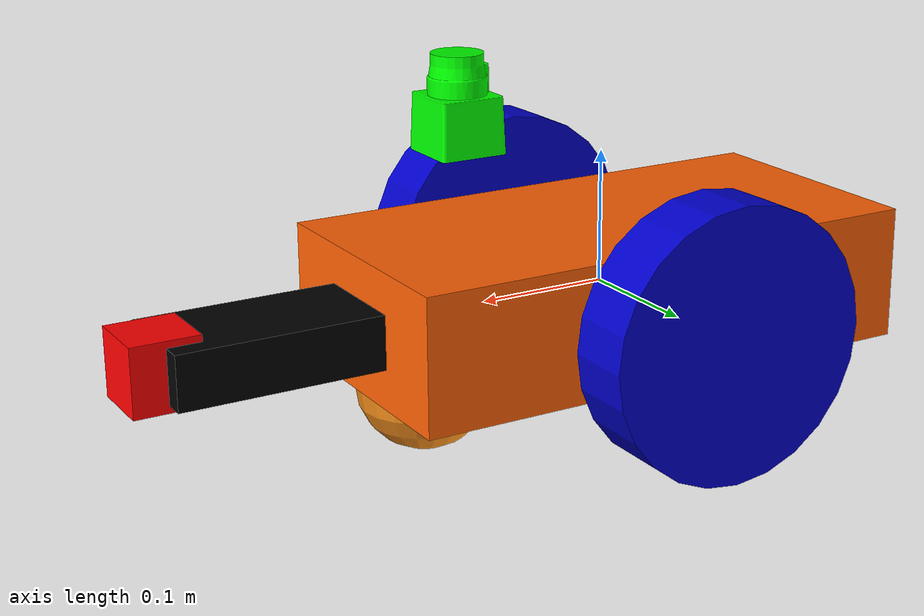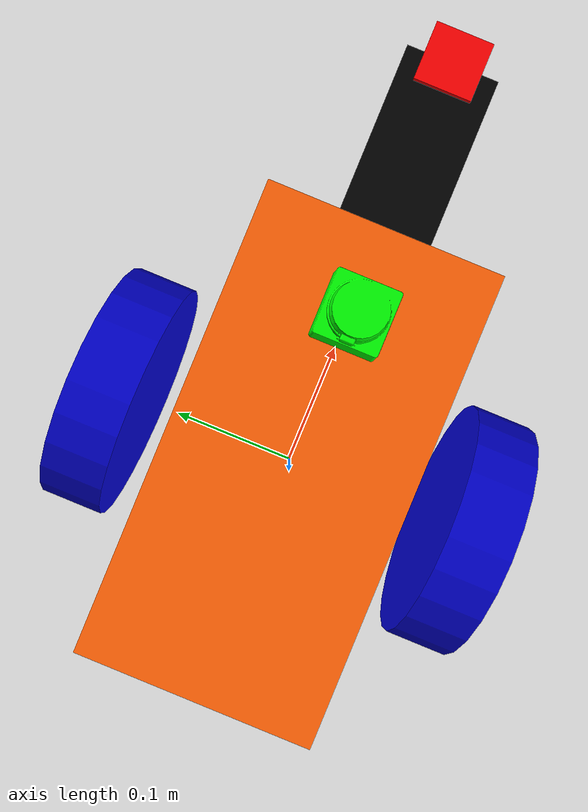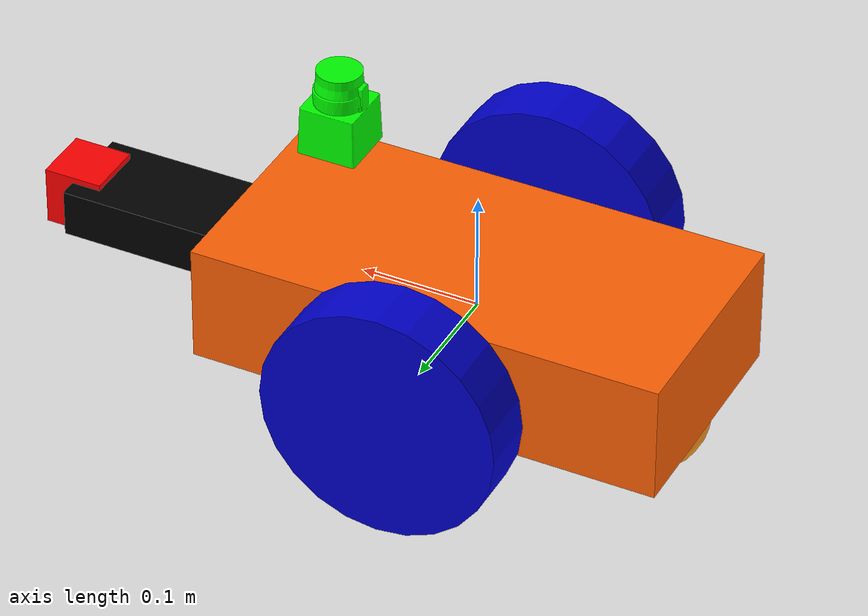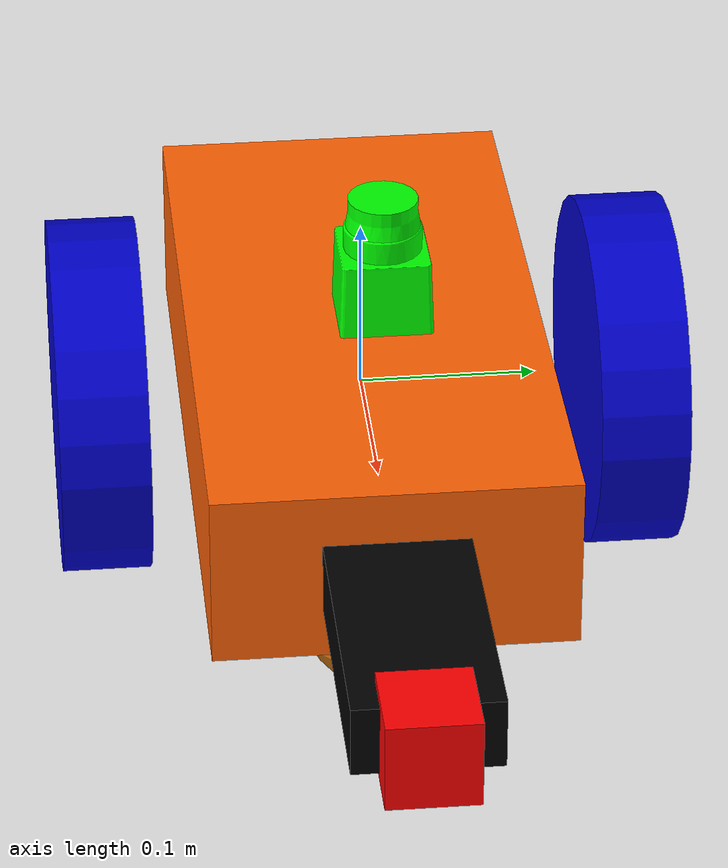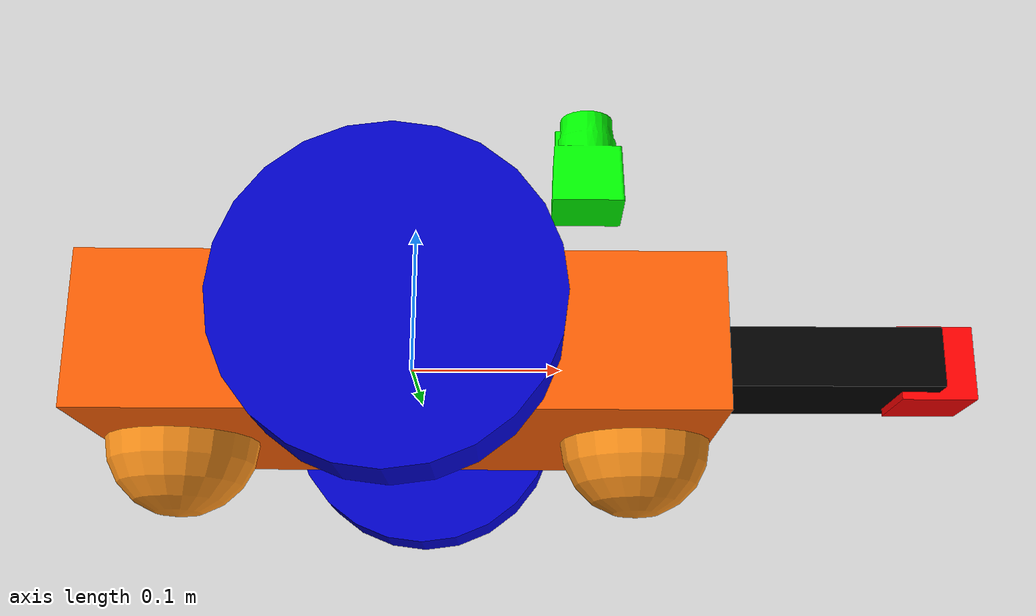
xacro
<?xml version='1.0'?>

<robot name="slam_bot" xmlns:xacro="http://www.ros.org/wiki/xacro">
  <xacro:include filename="$(find slam_project)/urdf/slam_bot.gazebo" />

  <!-- Color descriptions -->
	<material name="blue">
        <color rgba="0 0 0.8 1"/>
    </material>

	<material name="black">
		<color rgba="0 0 0 1"/>
	</material>

	<material name="white">
		<color rgba="1 1 1 1"/>
	</material>

	<material name="grey">
		<color rgba="0.8 0.8 0.8 1"/>
	</material>

    <material name="orange">
		<color rgba="1 0.38 0.02 1"/>
	</material>

    <material name="red">
		<color rgba="1 0 0 1"/>
	</material>

    <material name="green">
		<color rgba="0 1 0 1"/>
	</material>

  <link name="robot_footprint"></link>

  <joint name="robot_footprint_joint" type="fixed">
    <origin xyz="0 0 0" rpy="0 0 0" />
    <parent link="robot_footprint"/>
    <child link="chassis" />
  </joint>

  <link name='chassis'>
    <pose>0 0 0.1 0 0 0</pose>

    <inertial>
      <mass value="25.0"/>
      <origin xyz="0.0 0 0" rpy=" 0 0 0"/>
      <inertia
          ixx="0.1" ixy="0" ixz="0"
          iyy="0.1" iyz="0"
          izz="0.1"
      />
    </inertial>

    <collision name='chassis_collision'>
      <origin xyz="0 0 0" rpy=" 0 0 0"/>
      <geometry>
        <box size=".4 .2 .1"/>
      </geometry>
    </collision>

    <visual name='chassis_visual'>
      <origin xyz="0 0 0" rpy=" 0 0 0"/>
      <geometry>
        <box size=".4 .2 .1"/>
      </geometry>
      <material name="orange"/>
    </visual>

    <collision name='front_chassis_collision'>
      <origin xyz="0.2 0 0" rpy=" 0 0 0"/>
      <geometry>
        <box size=".3 .08 .04"/>
      </geometry>
    </collision>

    <visual name='front_chassis_visual'>
      <origin xyz="0.2 0 0" rpy=" 0 0 0"/>
      <geometry>
        <box size=".3 .08 .04"/>
      </geometry>
      <material name="black"/>
    </visual>

    <collision name='back_caster_collision'>
      <origin xyz="-0.15 0 -0.05" rpy=" 0 0 0"/>
      <geometry>
        <sphere radius="0.0499"/>
      </geometry>
    </collision>

    <visual name='back_caster_visual'>
      <origin xyz="-0.15 0 -0.05" rpy=" 0 0 0"/>
      <geometry>
        <sphere radius="0.05"/>
      </geometry>
    </visual>

    <collision name='front_caster_collision'>
      <origin xyz="0.15 0 -0.05" rpy=" 0 0 0"/>
      <geometry>
        <sphere radius="0.0499"/>
      </geometry>
    </collision>

    <visual name='front_caster_visual'>
      <origin xyz="0.15 0 -0.05" rpy=" 0 0 0"/>
      <geometry>
        <sphere radius="0.05"/>
      </geometry>
    </visual>

  </link>

  <link name="left_wheel">
    <inertial>
      <mass value="5.0"/>
      <origin xyz="0.0 0 0" rpy=" 0 1.5707 1.5707"/>
      <inertia
          ixx="0.1" ixy="0" ixz="0"
          iyy="0.1" iyz="0"
          izz="0.1"
      />
    </inertial>

    <collision name='collision'>
      <origin xyz="0.0 0 0" rpy=" 0 1.5707 1.5707"/>
      <geometry>
        <cylinder radius="0.1" length="0.05"/>
      </geometry>
    </collision>

    <visual name='left_wheel_visual'>
      <origin xyz="0.0 0 0" rpy=" 0 1.5707 1.5707"/>
      <geometry>
        <cylinder radius="0.1" length="0.05"/>
      </geometry>
      <material name="blue"/>
    </visual>
  </link>

  <joint type="continuous" name="left_wheel_hinge">
    <origin xyz="0 0.15 0" rpy="0 0 0"/>
    <child link="left_wheel"/>
    <parent link="chassis"/>
    <axis xyz="0 1 0" rpy="0 0 0"/>
    <limit effort="10000" velocity="1000"/>
    <dynamics damping="1.0" friction="1.0"/>
  </joint>

  <link name="right_wheel">
    <inertial>
      <mass value="5.0"/>
      <origin xyz="0.0 0 0" rpy=" 0 1.5707 1.5707"/>
      <inertia
          ixx="0.1" ixy="0" ixz="0"
          iyy="0.1" iyz="0"
          izz="0.1"
      />
    </inertial>

    <collision name='collision'>
      <origin xyz="0.0 0 0" rpy=" 0 1.5707 1.5707"/>
      <geometry>
        <cylinder radius="0.1" length="0.05"/>
      </geometry>
    </collision>

    <visual name='right_wheel_visual'>
      <origin xyz="0.0 0 0" rpy=" 0 1.5707 1.5707"/>
      <geometry>
        <cylinder radius="0.1" length="0.05"/>
      </geometry>
      <material name="blue"/>
    </visual>
  </link>

  <joint type="continuous" name="right_wheel_hinge">
    <origin xyz="0 -0.15 0" rpy="0 0 0"/>
    <child link="right_wheel"/>
    <parent link="chassis"/>
    <axis xyz="0 1 0" rpy="0 0 0"/>
    <limit effort="10000" velocity="1000"/>
    <dynamics damping="1.0" friction="1.0"/>
  </joint>

  <link name="camera">
    <inertial>
      <mass value="0.1"/>
      <origin xyz="0.0 0 0" rpy=" 0 0 0"/>
      <inertia
          ixx="1e-6" ixy="0" ixz="0"
          iyy="1e-6" iyz="0"
          izz="1e-6"
      />
    </inertial>

    <collision name='collision'>
      <origin xyz="0.0 0 0" rpy=" 0 0 0"/>
      <geometry>
        <box size="0.05 0.05 0.05"/>
      </geometry>
    </collision>

    <visual name='camera_visual'>
      <origin xyz="0.0 0 0" rpy=" 0 0 0"/>
      <geometry>
        <box size="0.05 0.05 0.05"/>
      </geometry>
      <material name="red"/>
    </visual>
  </link>

  <joint type="fixed" name="camera_joint">
    <origin xyz="0.35 0 0" rpy="0 0 0"/>
    <child link="camera"/>
    <parent link="chassis"/>
    <axis xyz="0 1 0" rpy="0 0 0"/>
    <limit effort="10000" velocity="1000"/>
    <dynamics damping="1.0" friction="1.0"/>
  </joint>

  <link name="camera_rgbd_frame"></link>

  <joint name="camera_rgbd_joint" type="fixed">
    <origin xyz="0 0 0" rpy="-${pi/2} 0 -${pi/2}"/>
    <parent link="camera"/>
    <child link="camera_rgbd_frame"/>
  </joint>

  <link name="hokuyo">
    <inertial>
      <mass value="0.1"/>
      <origin xyz="0.0 0 0" rpy=" 0 0 0"/>
      <inertia
          ixx="1e-6" ixy="0" ixz="0"
          iyy="1e-6" iyz="0"
          izz="1e-6"
      />
    </inertial>

    <collision name='collision'>
      <origin xyz="0.0 0 0" rpy=" 0 0 0"/>
      <geometry>
        <box size="0.1 0.1 0.1"/>
      </geometry>
    </collision>

    <visual name='hokuyo_visual'>
      <origin xyz="0.0 0 0" rpy=" 0 0 0"/>
      <geometry>
        <mesh filename="package://slam_project/meshes/hokuyo.dae"/>
      </geometry>
      <material name="green"/>
    </visual>
  </link>

  <joint type="fixed" name="hokuyo_joint">
    <origin xyz="0.12 0 0.15" rpy="0 0 0"/>
    <child link="hokuyo"/>
    <parent link="chassis"/>
    <axis xyz="0 1 0" rpy="0 0 0"/>
    <limit effort="10000" velocity="1000"/>
    <dynamics damping="1.0" friction="1.0"/>
  </joint>
</robot>
